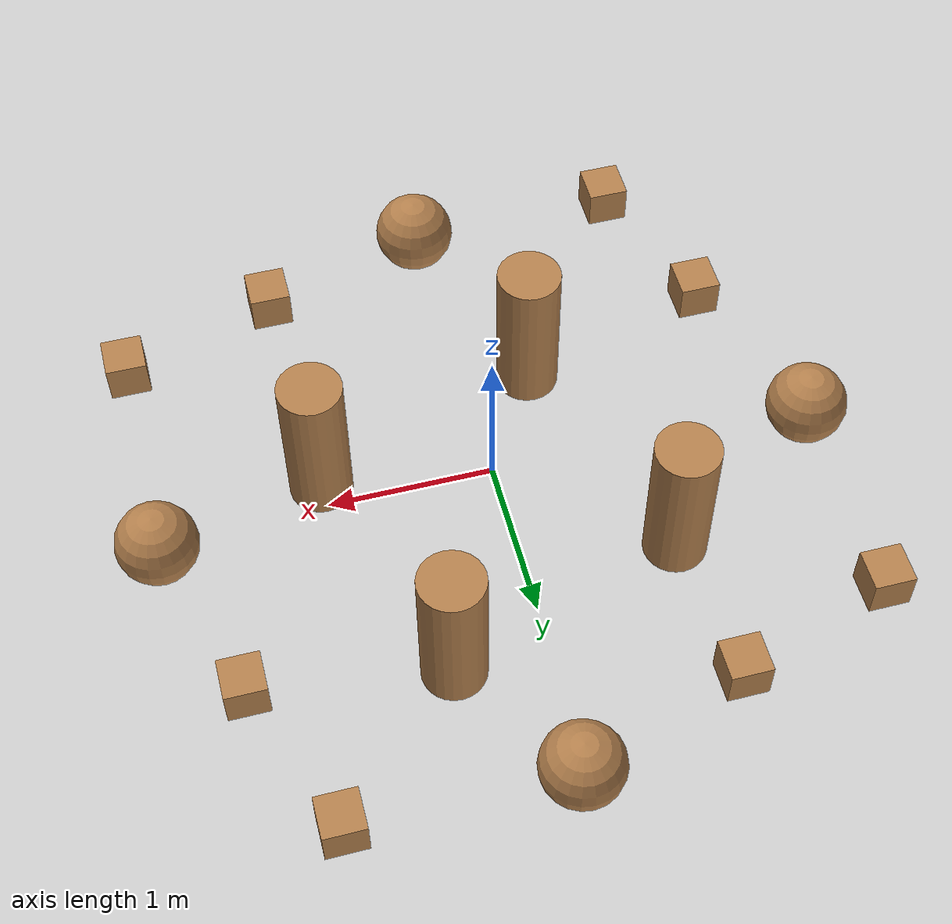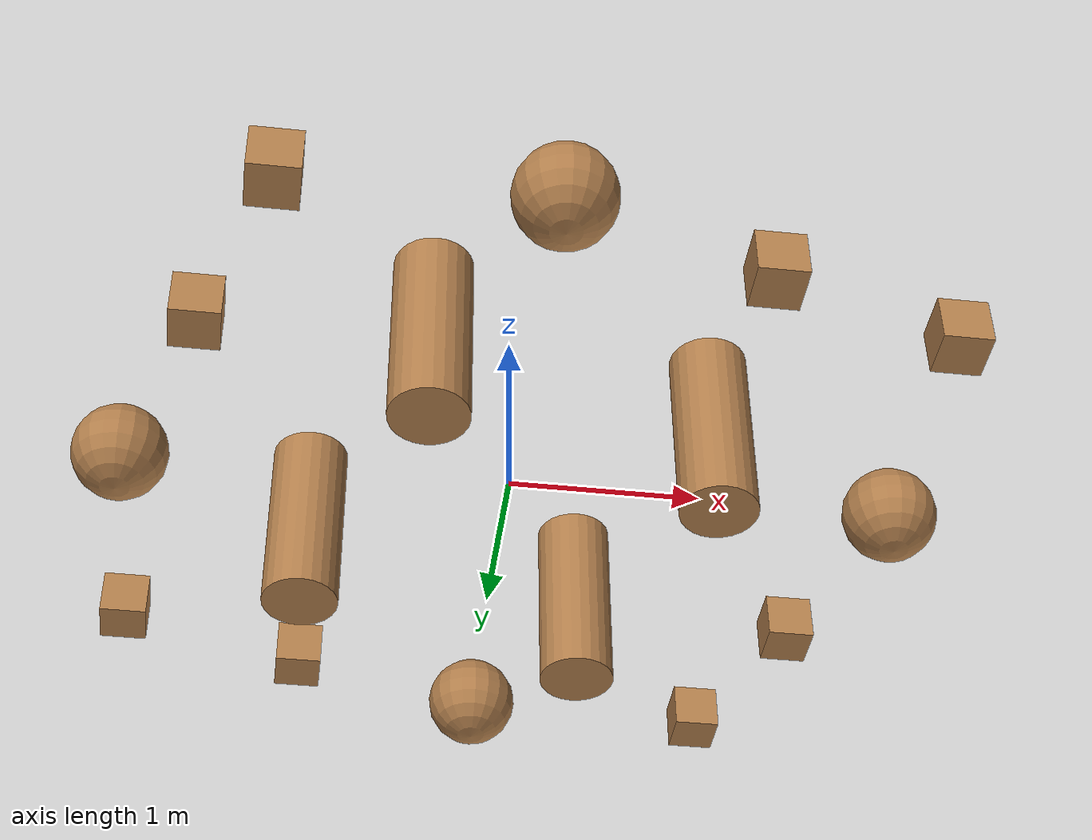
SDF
<?xml version='1.0'?>
<sdf version='1.7'>
  <model name='stage3_obs'>
    <link name='link_0'>
      <inertial>
        <mass>1</mass>
        <inertia>
          <ixx>0.1</ixx>
          <ixy>0</ixy>
          <ixz>0</ixz>
          <iyy>0.1</iyy>
          <iyz>0</iyz>
          <izz>0.1</izz>
        </inertia>
        <pose>0 0 0 0 -0 0</pose>
      </inertial>
      <pose>2.02532 0.002804 0 0 -0 0</pose>
      <gravity>1</gravity>
      <self_collide>0</self_collide>
      <kinematic>0</kinematic>
      <enable_wind>0</enable_wind>
      <visual name='visual'>
        <pose>0 0 0 0 -0 0</pose>
        <geometry>
          <sphere>
            <radius>0.25</radius>
          </sphere>
        </geometry>
        <material>
          <lighting>1</lighting>
          <script>
            <uri>file://media/materials/scripts/gazebo.material</uri>
            <name>Gazebo/Wood</name>
          </script>
          <shader type='pixel'>
            <normal_map>__default__</normal_map>
          </shader>
          <ambient>0.3 0.3 0.3 1</ambient>
          <diffuse>0.7 0.7 0.7 1</diffuse>
          <specular>0.01 0.01 0.01 1</specular>
          <emissive>0 0 0 1</emissive>
        </material>
        <transparency>0</transparency>
        <cast_shadows>1</cast_shadows>
      </visual>
      <collision name='collision'>
        <laser_retro>0</laser_retro>
        <max_contacts>10</max_contacts>
        <pose>0 0 0 0 -0 0</pose>
        <geometry>
          <sphere>
            <radius>0.25</radius>
          </sphere>
        </geometry>
        <surface>
          <friction>
            <ode>
              <mu>1</mu>
              <mu2>1</mu2>
              <fdir1>0 0 0</fdir1>
              <slip1>0</slip1>
              <slip2>0</slip2>
            </ode>
            <torsional>
              <coefficient>1</coefficient>
              <patch_radius>0</patch_radius>
              <surface_radius>0</surface_radius>
              <use_patch_radius>1</use_patch_radius>
              <ode>
                <slip>0</slip>
              </ode>
            </torsional>
          </friction>
          <bounce>
            <restitution_coefficient>0</restitution_coefficient>
            <threshold>1e+06</threshold>
          </bounce>
          <contact>
            <collide_without_contact>0</collide_without_contact>
            <collide_without_contact_bitmask>1</collide_without_contact_bitmask>
            <collide_bitmask>1</collide_bitmask>
            <ode>
              <soft_cfm>0</soft_cfm>
              <soft_erp>0.2</soft_erp>
              <kp>1e+13</kp>
              <kd>1</kd>
              <max_vel>0.01</max_vel>
              <min_depth>0</min_depth>
            </ode>
            <bullet>
              <split_impulse>1</split_impulse>
              <split_impulse_penetration_threshold>-0.01</split_impulse_penetration_threshold>
              <soft_cfm>0</soft_cfm>
              <soft_erp>0.2</soft_erp>
              <kp>1e+13</kp>
              <kd>1</kd>
            </bullet>
          </contact>
        </surface>
      </collision>
    </link>
    <link name='link_0_clone'>
      <inertial>
        <mass>1</mass>
        <inertia>
          <ixx>0.1</ixx>
          <ixy>0</ixy>
          <ixz>0</ixz>
          <iyy>0.1</iyy>
          <iyz>0</iyz>
          <izz>0.1</izz>
        </inertia>
        <pose>0 0 0 0 -0 0</pose>
      </inertial>
      <pose>0.025532 1.99735 0 0 -0 0</pose>
      <gravity>1</gravity>
      <self_collide>0</self_collide>
      <kinematic>0</kinematic>
      <enable_wind>0</enable_wind>
      <visual name='visual'>
        <pose>0 0 0 0 -0 0</pose>
        <geometry>
          <sphere>
            <radius>0.25</radius>
          </sphere>
        </geometry>
        <material>
          <lighting>1</lighting>
          <script>
            <uri>file://media/materials/scripts/gazebo.material</uri>
            <name>Gazebo/Wood</name>
          </script>
          <shader type='pixel'>
            <normal_map>__default__</normal_map>
          </shader>
          <ambient>0.3 0.3 0.3 1</ambient>
          <diffuse>0.7 0.7 0.7 1</diffuse>
          <specular>0.01 0.01 0.01 1</specular>
          <emissive>0 0 0 1</emissive>
        </material>
        <transparency>0</transparency>
        <cast_shadows>1</cast_shadows>
      </visual>
      <collision name='collision'>
        <laser_retro>0</laser_retro>
        <max_contacts>10</max_contacts>
        <pose>0 0 0 0 -0 0</pose>
        <geometry>
          <sphere>
            <radius>0.25</radius>
          </sphere>
        </geometry>
        <surface>
          <friction>
            <ode>
              <mu>1</mu>
              <mu2>1</mu2>
              <fdir1>0 0 0</fdir1>
              <slip1>0</slip1>
              <slip2>0</slip2>
            </ode>
            <torsional>
              <coefficient>1</coefficient>
              <patch_radius>0</patch_radius>
              <surface_radius>0</surface_radius>
              <use_patch_radius>1</use_patch_radius>
              <ode>
                <slip>0</slip>
              </ode>
            </torsional>
          </friction>
          <bounce>
            <restitution_coefficient>0</restitution_coefficient>
            <threshold>1e+06</threshold>
          </bounce>
          <contact>
            <collide_without_contact>0</collide_without_contact>
            <collide_without_contact_bitmask>1</collide_without_contact_bitmask>
            <collide_bitmask>1</collide_bitmask>
            <ode>
              <soft_cfm>0</soft_cfm>
              <soft_erp>0.2</soft_erp>
              <kp>1e+13</kp>
              <kd>1</kd>
              <max_vel>0.01</max_vel>
              <min_depth>0</min_depth>
            </ode>
            <bullet>
              <split_impulse>1</split_impulse>
              <split_impulse_penetration_threshold>-0.01</split_impulse_penetration_threshold>
              <soft_cfm>0</soft_cfm>
              <soft_erp>0.2</soft_erp>
              <kp>1e+13</kp>
              <kd>1</kd>
            </bullet>
          </contact>
        </surface>
      </collision>
    </link>
    <link name='link_0_clone_0'>
      <inertial>
        <mass>1</mass>
        <inertia>
          <ixx>0.1</ixx>
          <ixy>0</ixy>
          <ixz>0</ixz>
          <iyy>0.1</iyy>
          <iyz>0</iyz>
          <izz>0.1</izz>
        </inertia>
        <pose>0 0 0 0 -0 0</pose>
      </inertial>
      <pose>-2.00251 0.000469 0 0 -0 0</pose>
      <gravity>1</gravity>
      <self_collide>0</self_collide>
      <kinematic>0</kinematic>
      <enable_wind>0</enable_wind>
      <visual name='visual'>
        <pose>0 0 0 0 -0 0</pose>
        <geometry>
          <sphere>
            <radius>0.25</radius>
          </sphere>
        </geometry>
        <material>
          <lighting>1</lighting>
          <script>
            <uri>file://media/materials/scripts/gazebo.material</uri>
            <name>Gazebo/Wood</name>
          </script>
          <shader type='pixel'>
            <normal_map>__default__</normal_map>
          </shader>
          <ambient>0.3 0.3 0.3 1</ambient>
          <diffuse>0.7 0.7 0.7 1</diffuse>
          <specular>0.01 0.01 0.01 1</specular>
          <emissive>0 0 0 1</emissive>
        </material>
        <transparency>0</transparency>
        <cast_shadows>1</cast_shadows>
      </visual>
      <collision name='collision'>
        <laser_retro>0</laser_retro>
        <max_contacts>10</max_contacts>
        <pose>0 0 0 0 -0 0</pose>
        <geometry>
          <sphere>
            <radius>0.25</radius>
          </sphere>
        </geometry>
        <surface>
          <friction>
            <ode>
              <mu>1</mu>
              <mu2>1</mu2>
              <fdir1>0 0 0</fdir1>
              <slip1>0</slip1>
              <slip2>0</slip2>
            </ode>
            <torsional>
              <coefficient>1</coefficient>
              <patch_radius>0</patch_radius>
              <surface_radius>0</surface_radius>
              <use_patch_radius>1</use_patch_radius>
              <ode>
                <slip>0</slip>
              </ode>
            </torsional>
          </friction>
          <bounce>
            <restitution_coefficient>0</restitution_coefficient>
            <threshold>1e+06</threshold>
          </bounce>
          <contact>
            <collide_without_contact>0</collide_without_contact>
            <collide_without_contact_bitmask>1</collide_without_contact_bitmask>
            <collide_bitmask>1</collide_bitmask>
            <ode>
              <soft_cfm>0</soft_cfm>
              <soft_erp>0.2</soft_erp>
              <kp>1e+13</kp>
              <kd>1</kd>
              <max_vel>0.01</max_vel>
              <min_depth>0</min_depth>
            </ode>
            <bullet>
              <split_impulse>1</split_impulse>
              <split_impulse_penetration_threshold>-0.01</split_impulse_penetration_threshold>
              <soft_cfm>0</soft_cfm>
              <soft_erp>0.2</soft_erp>
              <kp>1e+13</kp>
              <kd>1</kd>
            </bullet>
          </contact>
        </surface>
      </collision>
    </link>
    <link name='link_0_clone_1'>
      <inertial>
        <mass>1</mass>
        <inertia>
          <ixx>0.1</ixx>
          <ixy>0</ixy>
          <ixz>0</ixz>
          <iyy>0.1</iyy>
          <iyz>0</iyz>
          <izz>0.1</izz>
        </inertia>
        <pose>0 0 0 0 -0 0</pose>
      </inertial>
      <pose>0.004711 -2.00381 0 0 -0 0</pose>
      <gravity>1</gravity>
      <self_collide>0</self_collide>
      <kinematic>0</kinematic>
      <enable_wind>0</enable_wind>
      <visual name='visual'>
        <pose>0 0 0 0 -0 0</pose>
        <geometry>
          <sphere>
            <radius>0.25</radius>
          </sphere>
        </geometry>
        <material>
          <lighting>1</lighting>
          <script>
            <uri>file://media/materials/scripts/gazebo.material</uri>
            <name>Gazebo/Wood</name>
          </script>
          <shader type='pixel'>
            <normal_map>__default__</normal_map>
          </shader>
          <ambient>0.3 0.3 0.3 1</ambient>
          <diffuse>0.7 0.7 0.7 1</diffuse>
          <specular>0.01 0.01 0.01 1</specular>
          <emissive>0 0 0 1</emissive>
        </material>
        <transparency>0</transparency>
        <cast_shadows>1</cast_shadows>
      </visual>
      <collision name='collision'>
        <laser_retro>0</laser_retro>
        <max_contacts>10</max_contacts>
        <pose>0 0 0 0 -0 0</pose>
        <geometry>
          <sphere>
            <radius>0.25</radius>
          </sphere>
        </geometry>
        <surface>
          <friction>
            <ode>
              <mu>1</mu>
              <mu2>1</mu2>
              <fdir1>0 0 0</fdir1>
              <slip1>0</slip1>
              <slip2>0</slip2>
            </ode>
            <torsional>
              <coefficient>1</coefficient>
              <patch_radius>0</patch_radius>
              <surface_radius>0</surface_radius>
              <use_patch_radius>1</use_patch_radius>
              <ode>
                <slip>0</slip>
              </ode>
            </torsional>
          </friction>
          <bounce>
            <restitution_coefficient>0</restitution_coefficient>
            <threshold>1e+06</threshold>
          </bounce>
          <contact>
            <collide_without_contact>0</collide_without_contact>
            <collide_without_contact_bitmask>1</collide_without_contact_bitmask>
            <collide_bitmask>1</collide_bitmask>
            <ode>
              <soft_cfm>0</soft_cfm>
              <soft_erp>0.2</soft_erp>
              <kp>1e+13</kp>
              <kd>1</kd>
              <max_vel>0.01</max_vel>
              <min_depth>0</min_depth>
            </ode>
            <bullet>
              <split_impulse>1</split_impulse>
              <split_impulse_penetration_threshold>-0.01</split_impulse_penetration_threshold>
              <soft_cfm>0</soft_cfm>
              <soft_erp>0.2</soft_erp>
              <kp>1e+13</kp>
              <kd>1</kd>
            </bullet>
          </contact>
        </surface>
      </collision>
    </link>
    <link name='link_2'>
      <inertial>
        <mass>1</mass>
        <inertia>
          <ixx>0.145833</ixx>
          <ixy>0</ixy>
          <ixz>0</ixz>
          <iyy>0.145833</iyy>
          <iyz>0</iyz>
          <izz>0.125</izz>
        </inertia>
        <pose>0 0 0 0 -0 0</pose>
      </inertial>
      <pose>0.978998 -0.499116 0 0 -0 0</pose>
      <gravity>1</gravity>
      <self_collide>0</self_collide>
      <kinematic>0</kinematic>
      <enable_wind>0</enable_wind>
      <visual name='visual'>
        <pose>0 0 0 0 -0 0</pose>
        <geometry>
          <cylinder>
            <radius>0.2</radius>
            <length>1</length>
          </cylinder>
        </geometry>
        <material>
          <lighting>1</lighting>
          <script>
            <uri>file://media/materials/scripts/gazebo.material</uri>
            <name>Gazebo/Wood</name>
          </script>
          <shader type='pixel'>
            <normal_map>__default__</normal_map>
          </shader>
          <ambient>1 1 1 1</ambient>
          <diffuse>1 1 1 1</diffuse>
          <specular>0.2 0.2 0.2 1</specular>
          <emissive>0 0 0 1</emissive>
        </material>
        <transparency>0</transparency>
        <cast_shadows>1</cast_shadows>
      </visual>
      <collision name='collision'>
        <laser_retro>0</laser_retro>
        <max_contacts>10</max_contacts>
        <pose>0 0 0 0 -0 0</pose>
        <geometry>
          <cylinder>
            <radius>0.2</radius>
            <length>1</length>
          </cylinder>
        </geometry>
        <surface>
          <friction>
            <ode>
              <mu>1</mu>
              <mu2>1</mu2>
              <fdir1>0 0 0</fdir1>
              <slip1>0</slip1>
              <slip2>0</slip2>
            </ode>
            <torsional>
              <coefficient>1</coefficient>
              <patch_radius>0</patch_radius>
              <surface_radius>0</surface_radius>
              <use_patch_radius>1</use_patch_radius>
              <ode>
                <slip>0</slip>
              </ode>
            </torsional>
          </friction>
          <bounce>
            <restitution_coefficient>0</restitution_coefficient>
            <threshold>1e+06</threshold>
          </bounce>
          <contact>
            <collide_without_contact>0</collide_without_contact>
            <collide_without_contact_bitmask>1</collide_without_contact_bitmask>
            <collide_bitmask>1</collide_bitmask>
            <ode>
              <soft_cfm>0</soft_cfm>
              <soft_erp>0.2</soft_erp>
              <kp>1e+13</kp>
              <kd>1</kd>
              <max_vel>0.01</max_vel>
              <min_depth>0</min_depth>
            </ode>
            <bullet>
              <split_impulse>1</split_impulse>
              <split_impulse_penetration_threshold>-0.01</split_impulse_penetration_threshold>
              <soft_cfm>0</soft_cfm>
              <soft_erp>0.2</soft_erp>
              <kp>1e+13</kp>
              <kd>1</kd>
            </bullet>
          </contact>
        </surface>
      </collision>
    </link>
    <link name='link_2_clone'>
      <inertial>
        <mass>1</mass>
        <inertia>
          <ixx>0.145833</ixx>
          <ixy>0</ixy>
          <ixz>0</ixz>
          <iyy>0.145833</iyy>
          <iyz>0</iyz>
          <izz>0.125</izz>
        </inertia>
        <pose>0 0 0 0 -0 0</pose>
      </inertial>
      <pose>-1.03132 0.487767 0 0 -0 0</pose>
      <gravity>1</gravity>
      <self_collide>0</self_collide>
      <kinematic>0</kinematic>
      <enable_wind>0</enable_wind>
      <visual name='visual'>
        <pose>0 0 0 0 -0 0</pose>
        <geometry>
          <cylinder>
            <radius>0.2</radius>
            <length>1</length>
          </cylinder>
        </geometry>
        <material>
          <lighting>1</lighting>
          <script>
            <uri>file://media/materials/scripts/gazebo.material</uri>
            <name>Gazebo/Wood</name>
          </script>
          <shader type='pixel'>
            <normal_map>__default__</normal_map>
          </shader>
          <ambient>1 1 1 1</ambient>
          <diffuse>1 1 1 1</diffuse>
          <specular>0.2 0.2 0.2 1</specular>
          <emissive>0 0 0 1</emissive>
        </material>
        <transparency>0</transparency>
        <cast_shadows>1</cast_shadows>
      </visual>
      <collision name='collision'>
        <laser_retro>0</laser_retro>
        <max_contacts>10</max_contacts>
        <pose>0 0 0 0 -0 0</pose>
        <geometry>
          <cylinder>
            <radius>0.2</radius>
            <length>1</length>
          </cylinder>
        </geometry>
        <surface>
          <friction>
            <ode>
              <mu>1</mu>
              <mu2>1</mu2>
              <fdir1>0 0 0</fdir1>
              <slip1>0</slip1>
              <slip2>0</slip2>
            </ode>
            <torsional>
              <coefficient>1</coefficient>
              <patch_radius>0</patch_radius>
              <surface_radius>0</surface_radius>
              <use_patch_radius>1</use_patch_radius>
              <ode>
                <slip>0</slip>
              </ode>
            </torsional>
          </friction>
          <bounce>
            <restitution_coefficient>0</restitution_coefficient>
            <threshold>1e+06</threshold>
          </bounce>
          <contact>
            <collide_without_contact>0</collide_without_contact>
            <collide_without_contact_bitmask>1</collide_without_contact_bitmask>
            <collide_bitmask>1</collide_bitmask>
            <ode>
              <soft_cfm>0</soft_cfm>
              <soft_erp>0.2</soft_erp>
              <kp>1e+13</kp>
              <kd>1</kd>
              <max_vel>0.01</max_vel>
              <min_depth>0</min_depth>
            </ode>
            <bullet>
              <split_impulse>1</split_impulse>
              <split_impulse_penetration_threshold>-0.01</split_impulse_penetration_threshold>
              <soft_cfm>0</soft_cfm>
              <soft_erp>0.2</soft_erp>
              <kp>1e+13</kp>
              <kd>1</kd>
            </bullet>
          </contact>
        </surface>
      </collision>
    </link>
    <link name='link_2_clone_0'>
      <inertial>
        <mass>1</mass>
        <inertia>
          <ixx>0.145833</ixx>
          <ixy>0</ixy>
          <ixz>0</ixz>
          <iyy>0.145833</iyy>
          <iyz>0</iyz>
          <izz>0.125</izz>
        </inertia>
        <pose>0 0 0 0 -0 0</pose>
      </inertial>
      <pose>0.493391 0.994263 0 0 -0 0</pose>
      <gravity>1</gravity>
      <self_collide>0</self_collide>
      <kinematic>0</kinematic>
      <enable_wind>0</enable_wind>
      <visual name='visual'>
        <pose>0 0 0 0 -0 0</pose>
        <geometry>
          <cylinder>
            <radius>0.2</radius>
            <length>1</length>
          </cylinder>
        </geometry>
        <material>
          <lighting>1</lighting>
          <script>
            <uri>file://media/materials/scripts/gazebo.material</uri>
            <name>Gazebo/Wood</name>
          </script>
          <shader type='pixel'>
            <normal_map>__default__</normal_map>
          </shader>
          <ambient>1 1 1 1</ambient>
          <diffuse>1 1 1 1</diffuse>
          <specular>0.2 0.2 0.2 1</specular>
          <emissive>0 0 0 1</emissive>
        </material>
        <transparency>0</transparency>
        <cast_shadows>1</cast_shadows>
      </visual>
      <collision name='collision'>
        <laser_retro>0</laser_retro>
        <max_contacts>10</max_contacts>
        <pose>0 0 0 0 -0 0</pose>
        <geometry>
          <cylinder>
            <radius>0.2</radius>
            <length>1</length>
          </cylinder>
        </geometry>
        <surface>
          <friction>
            <ode>
              <mu>1</mu>
              <mu2>1</mu2>
              <fdir1>0 0 0</fdir1>
              <slip1>0</slip1>
              <slip2>0</slip2>
            </ode>
            <torsional>
              <coefficient>1</coefficient>
              <patch_radius>0</patch_radius>
              <surface_radius>0</surface_radius>
              <use_patch_radius>1</use_patch_radius>
              <ode>
                <slip>0</slip>
              </ode>
            </torsional>
          </friction>
          <bounce>
            <restitution_coefficient>0</restitution_coefficient>
            <threshold>1e+06</threshold>
          </bounce>
          <contact>
            <collide_without_contact>0</collide_without_contact>
            <collide_without_contact_bitmask>1</collide_without_contact_bitmask>
            <collide_bitmask>1</collide_bitmask>
            <ode>
              <soft_cfm>0</soft_cfm>
              <soft_erp>0.2</soft_erp>
              <kp>1e+13</kp>
              <kd>1</kd>
              <max_vel>0.01</max_vel>
              <min_depth>0</min_depth>
            </ode>
            <bullet>
              <split_impulse>1</split_impulse>
              <split_impulse_penetration_threshold>-0.01</split_impulse_penetration_threshold>
              <soft_cfm>0</soft_cfm>
              <soft_erp>0.2</soft_erp>
              <kp>1e+13</kp>
              <kd>1</kd>
            </bullet>
          </contact>
        </surface>
      </collision>
    </link>
    <link name='link_2_clone_1'>
      <inertial>
        <mass>1</mass>
        <inertia>
          <ixx>0.145833</ixx>
          <ixy>0</ixy>
          <ixz>0</ixz>
          <iyy>0.145833</iyy>
          <iyz>0</iyz>
          <izz>0.125</izz>
        </inertia>
        <pose>0 0 0 0 -0 0</pose>
      </inertial>
      <pose>-0.503937 -1.01606 0 0 -0 0</pose>
      <gravity>1</gravity>
      <self_collide>0</self_collide>
      <kinematic>0</kinematic>
      <enable_wind>0</enable_wind>
      <visual name='visual'>
        <pose>0 0 0 0 -0 0</pose>
        <geometry>
          <cylinder>
            <radius>0.2</radius>
            <length>1</length>
          </cylinder>
        </geometry>
        <material>
          <lighting>1</lighting>
          <script>
            <uri>file://media/materials/scripts/gazebo.material</uri>
            <name>Gazebo/Wood</name>
          </script>
          <shader type='pixel'>
            <normal_map>__default__</normal_map>
          </shader>
          <ambient>1 1 1 1</ambient>
          <diffuse>1 1 1 1</diffuse>
          <specular>0.2 0.2 0.2 1</specular>
          <emissive>0 0 0 1</emissive>
        </material>
        <transparency>0</transparency>
        <cast_shadows>1</cast_shadows>
      </visual>
      <collision name='collision'>
        <laser_retro>0</laser_retro>
        <max_contacts>10</max_contacts>
        <pose>0 0 0 0 -0 0</pose>
        <geometry>
          <cylinder>
            <radius>0.2</radius>
            <length>1</length>
          </cylinder>
        </geometry>
        <surface>
          <friction>
            <ode>
              <mu>1</mu>
              <mu2>1</mu2>
              <fdir1>0 0 0</fdir1>
              <slip1>0</slip1>
              <slip2>0</slip2>
            </ode>
            <torsional>
              <coefficient>1</coefficient>
              <patch_radius>0</patch_radius>
              <surface_radius>0</surface_radius>
              <use_patch_radius>1</use_patch_radius>
              <ode>
                <slip>0</slip>
              </ode>
            </torsional>
          </friction>
          <bounce>
            <restitution_coefficient>0</restitution_coefficient>
            <threshold>1e+06</threshold>
          </bounce>
          <contact>
            <collide_without_contact>0</collide_without_contact>
            <collide_without_contact_bitmask>1</collide_without_contact_bitmask>
            <collide_bitmask>1</collide_bitmask>
            <ode>
              <soft_cfm>0</soft_cfm>
              <soft_erp>0.2</soft_erp>
              <kp>1e+13</kp>
              <kd>1</kd>
              <max_vel>0.01</max_vel>
              <min_depth>0</min_depth>
            </ode>
            <bullet>
              <split_impulse>1</split_impulse>
              <split_impulse_penetration_threshold>-0.01</split_impulse_penetration_threshold>
              <soft_cfm>0</soft_cfm>
              <soft_erp>0.2</soft_erp>
              <kp>1e+13</kp>
              <kd>1</kd>
            </bullet>
          </contact>
        </surface>
      </collision>
    </link>
    <link name='link_3'>
      <inertial>
        <mass>1</mass>
        <inertia>
          <ixx>0.166667</ixx>
          <ixy>0</ixy>
          <ixz>0</ixz>
          <iyy>0.166667</iyy>
          <iyz>0</iyz>
          <izz>0.166667</izz>
        </inertia>
        <pose>0 0 0 0 -0 0</pose>
      </inertial>
      <pose>-1.01043 1.65009 0 0 -0 0</pose>
      <gravity>1</gravity>
      <self_collide>0</self_collide>
      <kinematic>0</kinematic>
      <enable_wind>0</enable_wind>
      <visual name='visual'>
        <pose>0 0 0 0 -0 0</pose>
        <geometry>
          <box>
            <size>0.25 0.25 0.25</size>
          </box>
        </geometry>
        <material>
          <lighting>1</lighting>
          <script>
            <uri>file://media/materials/scripts/gazebo.material</uri>
            <name>Gazebo/Wood</name>
          </script>
          <shader type='pixel'>
            <normal_map>__default__</normal_map>
          </shader>
          <ambient>0.3 0.3 0.3 1</ambient>
          <diffuse>0.7 0.7 0.7 1</diffuse>
          <specular>0.01 0.01 0.01 1</specular>
          <emissive>0 0 0 1</emissive>
        </material>
        <transparency>0</transparency>
        <cast_shadows>1</cast_shadows>
      </visual>
      <collision name='collision'>
        <laser_retro>0</laser_retro>
        <max_contacts>10</max_contacts>
        <pose>0 0 0 0 -0 0</pose>
        <geometry>
          <box>
            <size>0.25 0.25 0.25</size>
          </box>
        </geometry>
        <surface>
          <friction>
            <ode>
              <mu>1</mu>
              <mu2>1</mu2>
              <fdir1>0 0 0</fdir1>
              <slip1>0</slip1>
              <slip2>0</slip2>
            </ode>
            <torsional>
              <coefficient>1</coefficient>
              <patch_radius>0</patch_radius>
              <surface_radius>0</surface_radius>
              <use_patch_radius>1</use_patch_radius>
              <ode>
                <slip>0</slip>
              </ode>
            </torsional>
          </friction>
          <bounce>
            <restitution_coefficient>0</restitution_coefficient>
            <threshold>1e+06</threshold>
          </bounce>
          <contact>
            <collide_without_contact>0</collide_without_contact>
            <collide_without_contact_bitmask>1</collide_without_contact_bitmask>
            <collide_bitmask>1</collide_bitmask>
            <ode>
              <soft_cfm>0</soft_cfm>
              <soft_erp>0.2</soft_erp>
              <kp>1e+13</kp>
              <kd>1</kd>
              <max_vel>0.01</max_vel>
              <min_depth>0</min_depth>
            </ode>
            <bullet>
              <split_impulse>1</split_impulse>
              <split_impulse_penetration_threshold>-0.01</split_impulse_penetration_threshold>
              <soft_cfm>0</soft_cfm>
              <soft_erp>0.2</soft_erp>
              <kp>1e+13</kp>
              <kd>1</kd>
            </bullet>
          </contact>
        </surface>
      </collision>
    </link>
    <link name='link_3_clone'>
      <inertial>
        <mass>1</mass>
        <inertia>
          <ixx>0.166667</ixx>
          <ixy>0</ixy>
          <ixz>0</ixz>
          <iyy>0.166667</iyy>
          <iyz>0</iyz>
          <izz>0.166667</izz>
        </inertia>
        <pose>0 0 0 0 -0 0</pose>
      </inertial>
      <pose>1.70276 1.05863 0 0 -0 0</pose>
      <gravity>1</gravity>
      <self_collide>0</self_collide>
      <kinematic>0</kinematic>
      <enable_wind>0</enable_wind>
      <visual name='visual'>
        <pose>0 0 0 0 -0 0</pose>
        <geometry>
          <box>
            <size>0.25 0.25 0.25</size>
          </box>
        </geometry>
        <material>
          <lighting>1</lighting>
          <script>
            <uri>file://media/materials/scripts/gazebo.material</uri>
            <name>Gazebo/Wood</name>
          </script>
          <shader type='pixel'>
            <normal_map>__default__</normal_map>
          </shader>
          <ambient>0.3 0.3 0.3 1</ambient>
          <diffuse>0.7 0.7 0.7 1</diffuse>
          <specular>0.01 0.01 0.01 1</specular>
          <emissive>0 0 0 1</emissive>
        </material>
        <transparency>0</transparency>
        <cast_shadows>1</cast_shadows>
      </visual>
      <collision name='collision'>
        <laser_retro>0</laser_retro>
        <max_contacts>10</max_contacts>
        <pose>0 0 0 0 -0 0</pose>
        <geometry>
          <box>
            <size>0.25 0.25 0.25</size>
          </box>
        </geometry>
        <surface>
          <friction>
            <ode>
              <mu>1</mu>
              <mu2>1</mu2>
              <fdir1>0 0 0</fdir1>
              <slip1>0</slip1>
              <slip2>0</slip2>
            </ode>
            <torsional>
              <coefficient>1</coefficient>
              <patch_radius>0</patch_radius>
              <surface_radius>0</surface_radius>
              <use_patch_radius>1</use_patch_radius>
              <ode>
                <slip>0</slip>
              </ode>
            </torsional>
          </friction>
          <bounce>
            <restitution_coefficient>0</restitution_coefficient>
            <threshold>1e+06</threshold>
          </bounce>
          <contact>
            <collide_without_contact>0</collide_without_contact>
            <collide_without_contact_bitmask>1</collide_without_contact_bitmask>
            <collide_bitmask>1</collide_bitmask>
            <ode>
              <soft_cfm>0</soft_cfm>
              <soft_erp>0.2</soft_erp>
              <kp>1e+13</kp>
              <kd>1</kd>
              <max_vel>0.01</max_vel>
              <min_depth>0</min_depth>
            </ode>
            <bullet>
              <split_impulse>1</split_impulse>
              <split_impulse_penetration_threshold>-0.01</split_impulse_penetration_threshold>
              <soft_cfm>0</soft_cfm>
              <soft_erp>0.2</soft_erp>
              <kp>1e+13</kp>
              <kd>1</kd>
            </bullet>
          </contact>
        </surface>
      </collision>
    </link>
    <link name='link_3_clone_0'>
      <inertial>
        <mass>1</mass>
        <inertia>
          <ixx>0.166667</ixx>
          <ixy>0</ixy>
          <ixz>0</ixz>
          <iyy>0.166667</iyy>
          <iyz>0</iyz>
          <izz>0.166667</izz>
        </inertia>
        <pose>0 0 0 0 -0 0</pose>
      </inertial>
      <pose>1.04563 -1.67586 0 0 -0 0</pose>
      <gravity>1</gravity>
      <self_collide>0</self_collide>
      <kinematic>0</kinematic>
      <enable_wind>0</enable_wind>
      <visual name='visual'>
        <pose>0 0 0 0 -0 0</pose>
        <geometry>
          <box>
            <size>0.25 0.25 0.25</size>
          </box>
        </geometry>
        <material>
          <lighting>1</lighting>
          <script>
            <uri>file://media/materials/scripts/gazebo.material</uri>
            <name>Gazebo/Wood</name>
          </script>
          <shader type='pixel'>
            <normal_map>__default__</normal_map>
          </shader>
          <ambient>0.3 0.3 0.3 1</ambient>
          <diffuse>0.7 0.7 0.7 1</diffuse>
          <specular>0.01 0.01 0.01 1</specular>
          <emissive>0 0 0 1</emissive>
        </material>
        <transparency>0</transparency>
        <cast_shadows>1</cast_shadows>
      </visual>
      <collision name='collision'>
        <laser_retro>0</laser_retro>
        <max_contacts>10</max_contacts>
        <pose>0 0 0 0 -0 0</pose>
        <geometry>
          <box>
            <size>0.25 0.25 0.25</size>
          </box>
        </geometry>
        <surface>
          <friction>
            <ode>
              <mu>1</mu>
              <mu2>1</mu2>
              <fdir1>0 0 0</fdir1>
              <slip1>0</slip1>
              <slip2>0</slip2>
            </ode>
            <torsional>
              <coefficient>1</coefficient>
              <patch_radius>0</patch_radius>
              <surface_radius>0</surface_radius>
              <use_patch_radius>1</use_patch_radius>
              <ode>
                <slip>0</slip>
              </ode>
            </torsional>
          </friction>
          <bounce>
            <restitution_coefficient>0</restitution_coefficient>
            <threshold>1e+06</threshold>
          </bounce>
          <contact>
            <collide_without_contact>0</collide_without_contact>
            <collide_without_contact_bitmask>1</collide_without_contact_bitmask>
            <collide_bitmask>1</collide_bitmask>
            <ode>
              <soft_cfm>0</soft_cfm>
              <soft_erp>0.2</soft_erp>
              <kp>1e+13</kp>
              <kd>1</kd>
              <max_vel>0.01</max_vel>
              <min_depth>0</min_depth>
            </ode>
            <bullet>
              <split_impulse>1</split_impulse>
              <split_impulse_penetration_threshold>-0.01</split_impulse_penetration_threshold>
              <soft_cfm>0</soft_cfm>
              <soft_erp>0.2</soft_erp>
              <kp>1e+13</kp>
              <kd>1</kd>
            </bullet>
          </contact>
        </surface>
      </collision>
    </link>
    <link name='link_3_clone_1'>
      <inertial>
        <mass>1</mass>
        <inertia>
          <ixx>0.166667</ixx>
          <ixy>0</ixy>
          <ixz>0</ixz>
          <iyy>0.166667</iyy>
          <iyz>0</iyz>
          <izz>0.166667</izz>
        </inertia>
        <pose>0 0 0 0 -0 0</pose>
      </inertial>
      <pose>-1.62871 -1.06886 0 0 -0 0</pose>
      <gravity>1</gravity>
      <self_collide>0</self_collide>
      <kinematic>0</kinematic>
      <enable_wind>0</enable_wind>
      <visual name='visual'>
        <pose>0 0 0 0 -0 0</pose>
        <geometry>
          <box>
            <size>0.25 0.25 0.25</size>
          </box>
        </geometry>
        <material>
          <lighting>1</lighting>
          <script>
            <uri>file://media/materials/scripts/gazebo.material</uri>
            <name>Gazebo/Wood</name>
          </script>
          <shader type='pixel'>
            <normal_map>__default__</normal_map>
          </shader>
          <ambient>0.3 0.3 0.3 1</ambient>
          <diffuse>0.7 0.7 0.7 1</diffuse>
          <specular>0.01 0.01 0.01 1</specular>
          <emissive>0 0 0 1</emissive>
        </material>
        <transparency>0</transparency>
        <cast_shadows>1</cast_shadows>
      </visual>
      <collision name='collision'>
        <laser_retro>0</laser_retro>
        <max_contacts>10</max_contacts>
        <pose>0 0 0 0 -0 0</pose>
        <geometry>
          <box>
            <size>0.25 0.25 0.25</size>
          </box>
        </geometry>
        <surface>
          <friction>
            <ode>
              <mu>1</mu>
              <mu2>1</mu2>
              <fdir1>0 0 0</fdir1>
              <slip1>0</slip1>
              <slip2>0</slip2>
            </ode>
            <torsional>
              <coefficient>1</coefficient>
              <patch_radius>0</patch_radius>
              <surface_radius>0</surface_radius>
              <use_patch_radius>1</use_patch_radius>
              <ode>
                <slip>0</slip>
              </ode>
            </torsional>
          </friction>
          <bounce>
            <restitution_coefficient>0</restitution_coefficient>
            <threshold>1e+06</threshold>
          </bounce>
          <contact>
            <collide_without_contact>0</collide_without_contact>
            <collide_without_contact_bitmask>1</collide_without_contact_bitmask>
            <collide_bitmask>1</collide_bitmask>
            <ode>
              <soft_cfm>0</soft_cfm>
              <soft_erp>0.2</soft_erp>
              <kp>1e+13</kp>
              <kd>1</kd>
              <max_vel>0.01</max_vel>
              <min_depth>0</min_depth>
            </ode>
            <bullet>
              <split_impulse>1</split_impulse>
              <split_impulse_penetration_threshold>-0.01</split_impulse_penetration_threshold>
              <soft_cfm>0</soft_cfm>
              <soft_erp>0.2</soft_erp>
              <kp>1e+13</kp>
              <kd>1</kd>
            </bullet>
          </contact>
        </surface>
      </collision>
    </link>
    <link name='link_3_clone_2'>
      <inertial>
        <mass>1</mass>
        <inertia>
          <ixx>0.166667</ixx>
          <ixy>0</ixy>
          <ixz>0</ixz>
          <iyy>0.166667</iyy>
          <iyz>0</iyz>
          <izz>0.166667</izz>
        </inertia>
        <pose>0 0 0 0 -0 0</pose>
      </inertial>
      <pose>1.35111 1.99497 0 0 -0 0</pose>
      <gravity>1</gravity>
      <self_collide>0</self_collide>
      <kinematic>0</kinematic>
      <enable_wind>0</enable_wind>
      <visual name='visual'>
        <pose>0 0 0 0 -0 0</pose>
        <geometry>
          <box>
            <size>0.25 0.25 0.25</size>
          </box>
        </geometry>
        <material>
          <lighting>1</lighting>
          <script>
            <uri>file://media/materials/scripts/gazebo.material</uri>
            <name>Gazebo/Wood</name>
          </script>
          <shader type='pixel'>
            <normal_map>__default__</normal_map>
          </shader>
          <ambient>0.3 0.3 0.3 1</ambient>
          <diffuse>0.7 0.7 0.7 1</diffuse>
          <specular>0.01 0.01 0.01 1</specular>
          <emissive>0 0 0 1</emissive>
        </material>
        <transparency>0</transparency>
        <cast_shadows>1</cast_shadows>
      </visual>
      <collision name='collision'>
        <laser_retro>0</laser_retro>
        <max_contacts>10</max_contacts>
        <pose>0 0 0 0 -0 0</pose>
        <geometry>
          <box>
            <size>0.25 0.25 0.25</size>
          </box>
        </geometry>
        <surface>
          <friction>
            <ode>
              <mu>1</mu>
              <mu2>1</mu2>
              <fdir1>0 0 0</fdir1>
              <slip1>0</slip1>
              <slip2>0</slip2>
            </ode>
            <torsional>
              <coefficient>1</coefficient>
              <patch_radius>0</patch_radius>
              <surface_radius>0</surface_radius>
              <use_patch_radius>1</use_patch_radius>
              <ode>
                <slip>0</slip>
              </ode>
            </torsional>
          </friction>
          <bounce>
            <restitution_coefficient>0</restitution_coefficient>
            <threshold>1e+06</threshold>
          </bounce>
          <contact>
            <collide_without_contact>0</collide_without_contact>
            <collide_without_contact_bitmask>1</collide_without_contact_bitmask>
            <collide_bitmask>1</collide_bitmask>
            <ode>
              <soft_cfm>0</soft_cfm>
              <soft_erp>0.2</soft_erp>
              <kp>1e+13</kp>
              <kd>1</kd>
              <max_vel>0.01</max_vel>
              <min_depth>0</min_depth>
            </ode>
            <bullet>
              <split_impulse>1</split_impulse>
              <split_impulse_penetration_threshold>-0.01</split_impulse_penetration_threshold>
              <soft_cfm>0</soft_cfm>
              <soft_erp>0.2</soft_erp>
              <kp>1e+13</kp>
              <kd>1</kd>
            </bullet>
          </contact>
        </surface>
      </collision>
    </link>
    <link name='link_3_clone_3'>
      <inertial>
        <mass>1</mass>
        <inertia>
          <ixx>0.166667</ixx>
          <ixy>0</ixy>
          <ixz>0</ixz>
          <iyy>0.166667</iyy>
          <iyz>0</iyz>
          <izz>0.166667</izz>
        </inertia>
        <pose>0 0 0 0 -0 0</pose>
      </inertial>
      <pose>2.01175 -1.35107 0 0 -0 0</pose>
      <gravity>1</gravity>
      <self_collide>0</self_collide>
      <kinematic>0</kinematic>
      <enable_wind>0</enable_wind>
      <visual name='visual'>
        <pose>0 0 0 0 -0 0</pose>
        <geometry>
          <box>
            <size>0.25 0.25 0.25</size>
          </box>
        </geometry>
        <material>
          <lighting>1</lighting>
          <script>
            <uri>file://media/materials/scripts/gazebo.material</uri>
            <name>Gazebo/Wood</name>
          </script>
          <shader type='pixel'>
            <normal_map>__default__</normal_map>
          </shader>
          <ambient>0.3 0.3 0.3 1</ambient>
          <diffuse>0.7 0.7 0.7 1</diffuse>
          <specular>0.01 0.01 0.01 1</specular>
          <emissive>0 0 0 1</emissive>
        </material>
        <transparency>0</transparency>
        <cast_shadows>1</cast_shadows>
      </visual>
      <collision name='collision'>
        <laser_retro>0</laser_retro>
        <max_contacts>10</max_contacts>
        <pose>0 0 0 0 -0 0</pose>
        <geometry>
          <box>
            <size>0.25 0.25 0.25</size>
          </box>
        </geometry>
        <surface>
          <friction>
            <ode>
              <mu>1</mu>
              <mu2>1</mu2>
              <fdir1>0 0 0</fdir1>
              <slip1>0</slip1>
              <slip2>0</slip2>
            </ode>
            <torsional>
              <coefficient>1</coefficient>
              <patch_radius>0</patch_radius>
              <surface_radius>0</surface_radius>
              <use_patch_radius>1</use_patch_radius>
              <ode>
                <slip>0</slip>
              </ode>
            </torsional>
          </friction>
          <bounce>
            <restitution_coefficient>0</restitution_coefficient>
            <threshold>1e+06</threshold>
          </bounce>
          <contact>
            <collide_without_contact>0</collide_without_contact>
            <collide_without_contact_bitmask>1</collide_without_contact_bitmask>
            <collide_bitmask>1</collide_bitmask>
            <ode>
              <soft_cfm>0</soft_cfm>
              <soft_erp>0.2</soft_erp>
              <kp>1e+13</kp>
              <kd>1</kd>
              <max_vel>0.01</max_vel>
              <min_depth>0</min_depth>
            </ode>
            <bullet>
              <split_impulse>1</split_impulse>
              <split_impulse_penetration_threshold>-0.01</split_impulse_penetration_threshold>
              <soft_cfm>0</soft_cfm>
              <soft_erp>0.2</soft_erp>
              <kp>1e+13</kp>
              <kd>1</kd>
            </bullet>
          </contact>
        </surface>
      </collision>
    </link>
    <link name='link_3_clone_4'>
      <inertial>
        <mass>1</mass>
        <inertia>
          <ixx>0.166667</ixx>
          <ixy>0</ixy>
          <ixz>0</ixz>
          <iyy>0.166667</iyy>
          <iyz>0</iyz>
          <izz>0.166667</izz>
        </inertia>
        <pose>0 0 0 0 -0 0</pose>
      </inertial>
      <pose>-1.99068 1.3074 0 0 -0 0</pose>
      <gravity>1</gravity>
      <self_collide>0</self_collide>
      <kinematic>0</kinematic>
      <enable_wind>0</enable_wind>
      <visual name='visual'>
        <pose>0 0 0 0 -0 0</pose>
        <geometry>
          <box>
            <size>0.25 0.25 0.25</size>
          </box>
        </geometry>
        <material>
          <lighting>1</lighting>
          <script>
            <uri>file://media/materials/scripts/gazebo.material</uri>
            <name>Gazebo/Wood</name>
          </script>
          <shader type='pixel'>
            <normal_map>__default__</normal_map>
          </shader>
          <ambient>0.3 0.3 0.3 1</ambient>
          <diffuse>0.7 0.7 0.7 1</diffuse>
          <specular>0.01 0.01 0.01 1</specular>
          <emissive>0 0 0 1</emissive>
        </material>
        <transparency>0</transparency>
        <cast_shadows>1</cast_shadows>
      </visual>
      <collision name='collision'>
        <laser_retro>0</laser_retro>
        <max_contacts>10</max_contacts>
        <pose>0 0 0 0 -0 0</pose>
        <geometry>
          <box>
            <size>0.25 0.25 0.25</size>
          </box>
        </geometry>
        <surface>
          <friction>
            <ode>
              <mu>1</mu>
              <mu2>1</mu2>
              <fdir1>0 0 0</fdir1>
              <slip1>0</slip1>
              <slip2>0</slip2>
            </ode>
            <torsional>
              <coefficient>1</coefficient>
              <patch_radius>0</patch_radius>
              <surface_radius>0</surface_radius>
              <use_patch_radius>1</use_patch_radius>
              <ode>
                <slip>0</slip>
              </ode>
            </torsional>
          </friction>
          <bounce>
            <restitution_coefficient>0</restitution_coefficient>
            <threshold>1e+06</threshold>
          </bounce>
          <contact>
            <collide_without_contact>0</collide_without_contact>
            <collide_without_contact_bitmask>1</collide_without_contact_bitmask>
            <collide_bitmask>1</collide_bitmask>
            <ode>
              <soft_cfm>0</soft_cfm>
              <soft_erp>0.2</soft_erp>
              <kp>1e+13</kp>
              <kd>1</kd>
              <max_vel>0.01</max_vel>
              <min_depth>0</min_depth>
            </ode>
            <bullet>
              <split_impulse>1</split_impulse>
              <split_impulse_penetration_threshold>-0.01</split_impulse_penetration_threshold>
              <soft_cfm>0</soft_cfm>
              <soft_erp>0.2</soft_erp>
              <kp>1e+13</kp>
              <kd>1</kd>
            </bullet>
          </contact>
        </surface>
      </collision>
    </link>
    <link name='link_3_clone_5'>
      <inertial>
        <mass>1</mass>
        <inertia>
          <ixx>0.166667</ixx>
          <ixy>0</ixy>
          <ixz>0</ixz>
          <iyy>0.166667</iyy>
          <iyz>0</iyz>
          <izz>0.166667</izz>
        </inertia>
        <pose>0 0 0 0 -0 0</pose>
      </inertial>
      <pose>-1.29959 -2.00816 0 0 -0 0</pose>
      <gravity>1</gravity>
      <self_collide>0</self_collide>
      <kinematic>0</kinematic>
      <enable_wind>0</enable_wind>
      <visual name='visual'>
        <pose>0 0 0 0 -0 0</pose>
        <geometry>
          <box>
            <size>0.25 0.25 0.25</size>
          </box>
        </geometry>
        <material>
          <lighting>1</lighting>
          <script>
            <uri>file://media/materials/scripts/gazebo.material</uri>
            <name>Gazebo/Wood</name>
          </script>
          <shader type='pixel'>
            <normal_map>__default__</normal_map>
          </shader>
          <ambient>0.3 0.3 0.3 1</ambient>
          <diffuse>0.7 0.7 0.7 1</diffuse>
          <specular>0.01 0.01 0.01 1</specular>
          <emissive>0 0 0 1</emissive>
        </material>
        <transparency>0</transparency>
        <cast_shadows>1</cast_shadows>
      </visual>
      <collision name='collision'>
        <laser_retro>0</laser_retro>
        <max_contacts>10</max_contacts>
        <pose>0 0 0 0 -0 0</pose>
        <geometry>
          <box>
            <size>0.25 0.25 0.25</size>
          </box>
        </geometry>
        <surface>
          <friction>
            <ode>
              <mu>1</mu>
              <mu2>1</mu2>
              <fdir1>0 0 0</fdir1>
              <slip1>0</slip1>
              <slip2>0</slip2>
            </ode>
            <torsional>
              <coefficient>1</coefficient>
              <patch_radius>0</patch_radius>
              <surface_radius>0</surface_radius>
              <use_patch_radius>1</use_patch_radius>
              <ode>
                <slip>0</slip>
              </ode>
            </torsional>
          </friction>
          <bounce>
            <restitution_coefficient>0</restitution_coefficient>
            <threshold>1e+06</threshold>
          </bounce>
          <contact>
            <collide_without_contact>0</collide_without_contact>
            <collide_without_contact_bitmask>1</collide_without_contact_bitmask>
            <collide_bitmask>1</collide_bitmask>
            <ode>
              <soft_cfm>0</soft_cfm>
              <soft_erp>0.2</soft_erp>
              <kp>1e+13</kp>
              <kd>1</kd>
              <max_vel>0.01</max_vel>
              <min_depth>0</min_depth>
            </ode>
            <bullet>
              <split_impulse>1</split_impulse>
              <split_impulse_penetration_threshold>-0.01</split_impulse_penetration_threshold>
              <soft_cfm>0</soft_cfm>
              <soft_erp>0.2</soft_erp>
              <kp>1e+13</kp>
              <kd>1</kd>
            </bullet>
          </contact>
        </surface>
      </collision>
    </link>
    <static>0</static>
    <allow_auto_disable>1</allow_auto_disable>
  </model>
</sdf>
